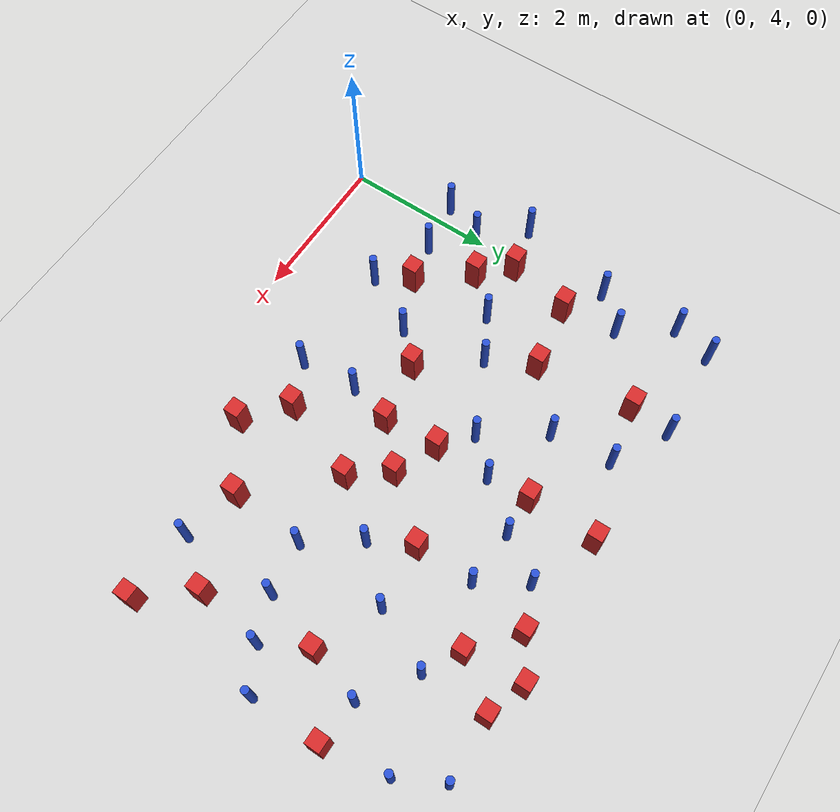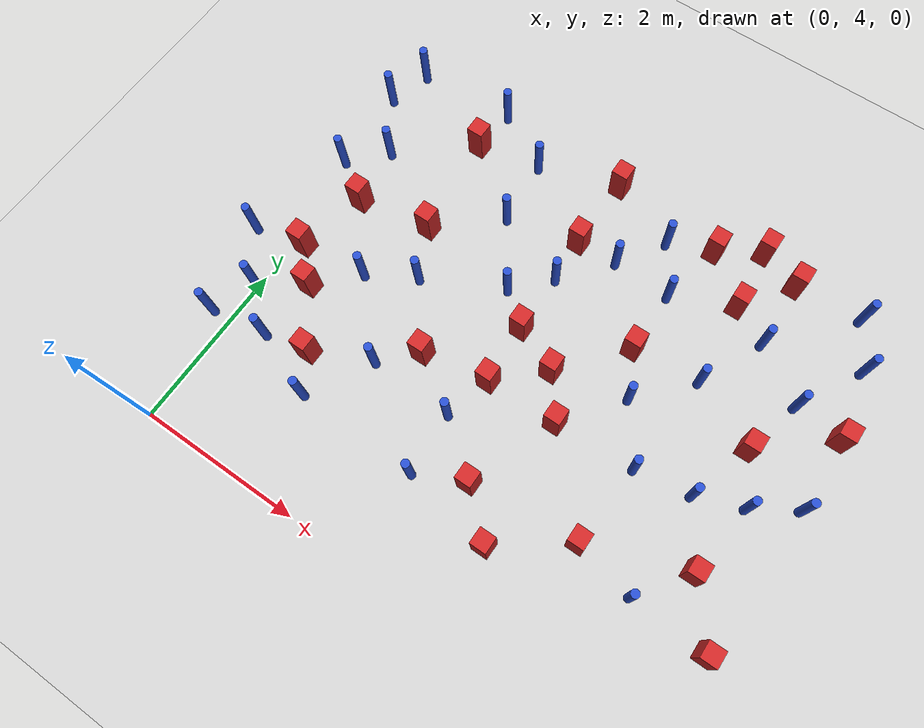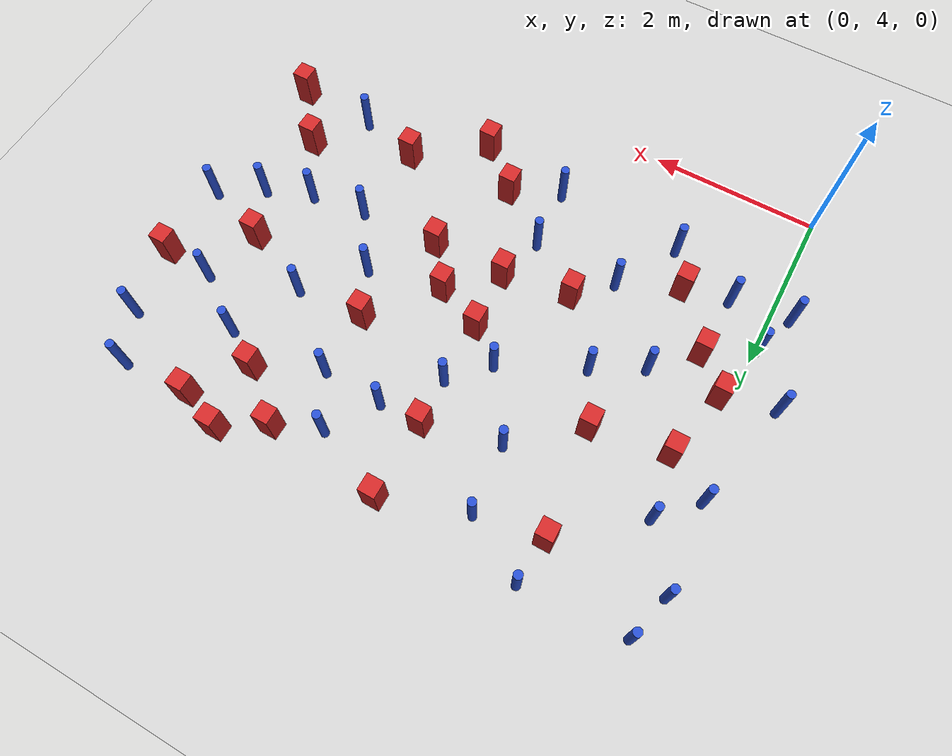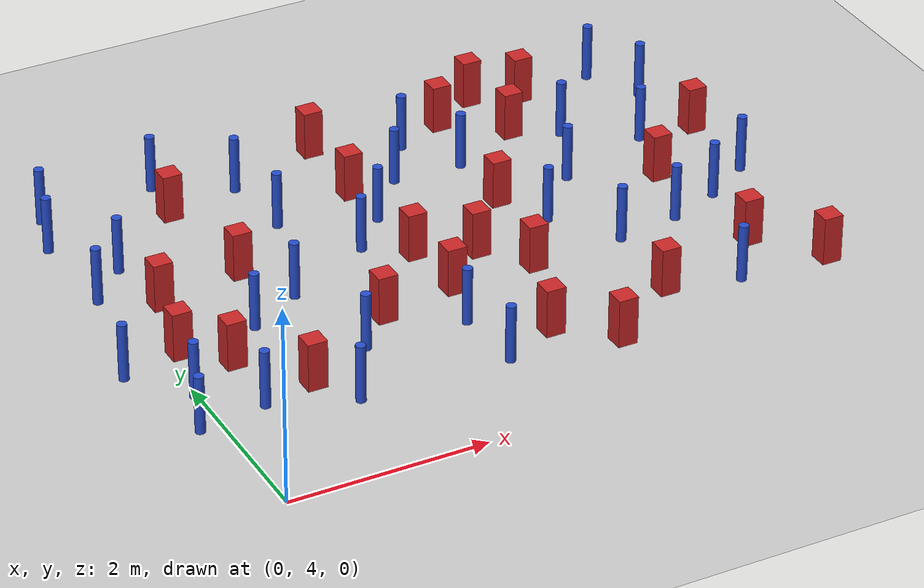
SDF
<sdf version="1.6">
 <world name="default">
  <model name="ground_plane">
   <static>1</static>
   <link name="link">
    <collision name="collision">
     <geometry><plane><normal>0 0 1</normal><size>100 100</size></plane></geometry>
     <surface><friction><ode><mu>100</mu><mu2>50</mu2></ode></friction></surface>
    </collision>
    <visual name="visual">
     <cast_shadows>0</cast_shadows>
     <geometry><plane><normal>0 0 1</normal><size>100 100</size></plane></geometry>
     <material>
      <ambient>1.0 1.0 1.0 1.0</ambient>
      <diffuse>0.8 0.8 0.8 1.0</diffuse>
      <specular>0.01 0.01 0.01 1.000000</specular>
     </material>
    </visual>
   </link>
  </model>
  <model name="pole_obstacle0">
   <static>true</static>
   <pose>5.19741799628 8.48322336086 -9.47619616065e-06 5.49618799737e-07 2.36310414065e-07 -1.55090534796e-07</pose>
   <link name="link">
    <pose>0 0 0.3 0 -0 0</pose>
    <inertial>
     <mass>1</mass>
     <inertia><ixx>0.145833</ixx><ixy>0</ixy><ixz>0</ixz><iyy>0.145833</iyy><iyz>0</iyz><izz>0.125</izz></inertia>
    </inertial>
    <collision name="collision">
     <geometry><cylinder><radius>0.05</radius><length>.6</length></cylinder></geometry>
    </collision>
    <visual name="visual">
     <geometry><cylinder><radius>0.05</radius><length>.6</length></cylinder></geometry>
     <material>
      <script><name>Gazebo/Blue</name><uri>file://media/materials/scripts/gazebo.material</uri></script>
     </material>
    </visual>
   </link>
  </model>
  <model name="square_post_obstacle7">
   <static>true</static>
   <pose>2.09273020799 6.26448453688 -6.11067671241e-07 -5.50515727128e-06 -8.79689657224e-07 2.37013304536e-05</pose>
   <link name="link">
    <pose>0 0 0.25 0 -0 0</pose>
    <inertial>
     <mass>100</mass>
     <inertia>
      <ixx>0.166667</ixx>
      <ixy>0</ixy>
      <ixz>0</ixz>
      <iyy>0.166667</iyy>
      <iyz>0</iyz>
      <izz>0.166667</izz>
     </inertia>
    </inertial>
    <collision name="collision"><geometry><box><size>.2 .2 .5</size></box></geometry></collision>
    <visual name="visual">
     <geometry><box><size>.2 .2 .5</size></box></geometry>
     <material>
      <script><name>Gazebo/Red</name><uri>file://media/materials/scripts/gazebo.material</uri></script>
     </material>
    </visual>
   </link>
  </model>
  <model name="square_post_obstacle19">
   <static>true</static>
   <pose>3.87518315333 4.90633559516 -6.11067671241e-07 -5.50515727128e-06 -8.79689657224e-07 2.37013304536e-05</pose>
   <link name="link">
    <pose>0 0 0.25 0 -0 0</pose>
    <inertial>
     <mass>100</mass>
     <inertia>
      <ixx>0.166667</ixx>
      <ixy>0</ixy>
      <ixz>0</ixz>
      <iyy>0.166667</iyy>
      <iyz>0</iyz>
      <izz>0.166667</izz>
     </inertia>
    </inertial>
    <collision name="collision"><geometry><box><size>.2 .2 .5</size></box></geometry></collision>
    <visual name="visual">
     <geometry><box><size>.2 .2 .5</size></box></geometry>
     <material>
      <script><name>Gazebo/Red</name><uri>file://media/materials/scripts/gazebo.material</uri></script>
     </material>
    </visual>
   </link>
  </model>
  <model name="pole_obstacle15">
   <static>true</static>
   <pose>0.95421234764 6.65799142697 -9.47619616065e-06 5.49618799737e-07 2.36310414071e-07 -1.55090534793e-07</pose>
   <link name="link">
    <pose>0 0 0.3 0 -0 0</pose>
    <inertial>
     <mass>1</mass>
     <inertia><ixx>0.145833</ixx><ixy>0</ixy><ixz>0</ixz><iyy>0.145833</iyy><iyz>0</iyz><izz>0.125</izz></inertia>
    </inertial>
    <collision name="collision">
     <geometry><cylinder><radius>0.05</radius><length>.6</length></cylinder></geometry>
    </collision>
    <visual name="visual">
     <geometry><cylinder><radius>0.05</radius><length>.6</length></cylinder></geometry>
     <material>
      <script><name>Gazebo/Blue</name><uri>file://media/materials/scripts/gazebo.material</uri></script>
     </material>
    </visual>
   </link>
  </model>
  <model name="square_post_obstacle26">
   <static>true</static>
   <pose>0.336653730102 7.42108719688 -6.11067671241e-07 -5.50515727128e-06 -8.79689657224e-07 2.37013304536e-05</pose>
   <link name="link">
    <pose>0 0 0.25 0 -0 0</pose>
    <inertial>
     <mass>100</mass>
     <inertia>
      <ixx>0.166667</ixx>
      <ixy>0</ixy>
      <ixz>0</ixz>
      <iyy>0.166667</iyy>
      <iyz>0</iyz>
      <izz>0.166667</izz>
     </inertia>
    </inertial>
    <collision name="collision"><geometry><box><size>.2 .2 .5</size></box></geometry></collision>
    <visual name="visual">
     <geometry><box><size>.2 .2 .5</size></box></geometry>
     <material>
      <script><name>Gazebo/Red</name><uri>file://media/materials/scripts/gazebo.material</uri></script>
     </material>
    </visual>
   </link>
  </model>
  <model name="pole_obstacle26">
   <static>true</static>
   <pose>-0.219872933968 8.78757814575 -9.47619616065e-06 5.49618799737e-07 2.36310414035e-07 -1.55090534816e-07</pose>
   <link name="link">
    <pose>0 0 0.3 0 -0 0</pose>
    <inertial>
     <mass>1</mass>
     <inertia><ixx>0.145833</ixx><ixy>0</ixy><ixz>0</ixz><iyy>0.145833</iyy><iyz>0</iyz><izz>0.125</izz></inertia>
    </inertial>
    <collision name="collision">
     <geometry><cylinder><radius>0.05</radius><length>.6</length></cylinder></geometry>
    </collision>
    <visual name="visual">
     <geometry><cylinder><radius>0.05</radius><length>.6</length></cylinder></geometry>
     <material>
      <script><name>Gazebo/Blue</name><uri>file://media/materials/scripts/gazebo.material</uri></script>
     </material>
    </visual>
   </link>
  </model>
  <model name="pole_obstacle29">
   <static>true</static>
   <pose>1.84248294729 8.99189750291 -9.47619616065e-06 5.49618799737e-07 2.36310414046e-07 -1.55090534809e-07</pose>
   <link name="link">
    <pose>0 0 0.3 0 -0 0</pose>
    <inertial>
     <mass>1</mass>
     <inertia><ixx>0.145833</ixx><ixy>0</ixy><ixz>0</ixz><iyy>0.145833</iyy><iyz>0</iyz><izz>0.125</izz></inertia>
    </inertial>
    <collision name="collision">
     <geometry><cylinder><radius>0.05</radius><length>.6</length></cylinder></geometry>
    </collision>
    <visual name="visual">
     <geometry><cylinder><radius>0.05</radius><length>.6</length></cylinder></geometry>
     <material>
      <script><name>Gazebo/Blue</name><uri>file://media/materials/scripts/gazebo.material</uri></script>
     </material>
    </visual>
   </link>
  </model>
  <model name="pole_obstacle30">
   <static>true</static>
   <pose>4.83496480457 7.69824750195 -9.47619616065e-06 5.49618799737e-07 2.36310414037e-07 -1.55090534814e-07</pose>
   <link name="link">
    <pose>0 0 0.3 0 -0 0</pose>
    <inertial>
     <mass>1</mass>
     <inertia><ixx>0.145833</ixx><ixy>0</ixy><ixz>0</ixz><iyy>0.145833</iyy><iyz>0</iyz><izz>0.125</izz></inertia>
    </inertial>
    <collision name="collision">
     <geometry><cylinder><radius>0.05</radius><length>.6</length></cylinder></geometry>
    </collision>
    <visual name="visual">
     <geometry><cylinder><radius>0.05</radius><length>.6</length></cylinder></geometry>
     <material>
      <script><name>Gazebo/Blue</name><uri>file://media/materials/scripts/gazebo.material</uri></script>
     </material>
    </visual>
   </link>
  </model>
  <model name="square_post_obstacle36">
   <static>true</static>
   <pose>2.81051215205 9.31708207567 -6.11067671241e-07 -5.50515727128e-06 -8.79689657224e-07 2.37013304536e-05</pose>
   <link name="link">
    <pose>0 0 0.25 0 -0 0</pose>
    <inertial>
     <mass>100</mass>
     <inertia>
      <ixx>0.166667</ixx>
      <ixy>0</ixy>
      <ixz>0</ixz>
      <iyy>0.166667</iyy>
      <iyz>0</iyz>
      <izz>0.166667</izz>
     </inertia>
    </inertial>
    <collision name="collision"><geometry><box><size>.2 .2 .5</size></box></geometry></collision>
    <visual name="visual">
     <geometry><box><size>.2 .2 .5</size></box></geometry>
     <material>
      <script><name>Gazebo/Red</name><uri>file://media/materials/scripts/gazebo.material</uri></script>
     </material>
    </visual>
   </link>
  </model>
  <model name="pole_obstacle38">
   <static>true</static>
   <pose>1.9216149402 8.19574291978 -9.47619616065e-06 5.49618799737e-07 2.36310414046e-07 -1.55090534809e-07</pose>
   <link name="link">
    <pose>0 0 0.3 0 -0 0</pose>
    <inertial>
     <mass>1</mass>
     <inertia><ixx>0.145833</ixx><ixy>0</ixy><ixz>0</ixz><iyy>0.145833</iyy><iyz>0</iyz><izz>0.125</izz></inertia>
    </inertial>
    <collision name="collision">
     <geometry><cylinder><radius>0.05</radius><length>.6</length></cylinder></geometry>
    </collision>
    <visual name="visual">
     <geometry><cylinder><radius>0.05</radius><length>.6</length></cylinder></geometry>
     <material>
      <script><name>Gazebo/Blue</name><uri>file://media/materials/scripts/gazebo.material</uri></script>
     </material>
    </visual>
   </link>
  </model>
  <model name="square_post_obstacle38">
   <static>true</static>
   <pose>3.40148820344 6.88970716556 -6.11067671241e-07 -5.50515727128e-06 -8.79689657224e-07 2.37013304536e-05</pose>
   <link name="link">
    <pose>0 0 0.25 0 -0 0</pose>
    <inertial>
     <mass>100</mass>
     <inertia>
      <ixx>0.166667</ixx>
      <ixy>0</ixy>
      <ixz>0</ixz>
      <iyy>0.166667</iyy>
      <iyz>0</iyz>
      <izz>0.166667</izz>
     </inertia>
    </inertial>
    <collision name="collision"><geometry><box><size>.2 .2 .5</size></box></geometry></collision>
    <visual name="visual">
     <geometry><box><size>.2 .2 .5</size></box></geometry>
     <material>
      <script><name>Gazebo/Red</name><uri>file://media/materials/scripts/gazebo.material</uri></script>
     </material>
    </visual>
   </link>
  </model>
  <model name="square_post_obstacle54">
   <static>true</static>
   <pose>5.81487202677 5.89066754225 -6.11067671241e-07 -5.50515727128e-06 -8.79689657224e-07 2.37013304536e-05</pose>
   <link name="link">
    <pose>0 0 0.25 0 -0 0</pose>
    <inertial>
     <mass>100</mass>
     <inertia>
      <ixx>0.166667</ixx>
      <ixy>0</ixy>
      <ixz>0</ixz>
      <iyy>0.166667</iyy>
      <iyz>0</iyz>
      <izz>0.166667</izz>
     </inertia>
    </inertial>
    <collision name="collision"><geometry><box><size>.2 .2 .5</size></box></geometry></collision>
    <visual name="visual">
     <geometry><box><size>.2 .2 .5</size></box></geometry>
     <material>
      <script><name>Gazebo/Red</name><uri>file://media/materials/scripts/gazebo.material</uri></script>
     </material>
    </visual>
   </link>
  </model>
  <model name="square_post_obstacle57">
   <static>true</static>
   <pose>1.22061801658 7.57618531943 -6.11067671241e-07 -5.50515727128e-06 -8.79689657224e-07 2.37013304536e-05</pose>
   <link name="link">
    <pose>0 0 0.25 0 -0 0</pose>
    <inertial>
     <mass>100</mass>
     <inertia>
      <ixx>0.166667</ixx>
      <ixy>0</ixy>
      <ixz>0</ixz>
      <iyy>0.166667</iyy>
      <iyz>0</iyz>
      <izz>0.166667</izz>
     </inertia>
    </inertial>
    <collision name="collision"><geometry><box><size>.2 .2 .5</size></box></geometry></collision>
    <visual name="visual">
     <geometry><box><size>.2 .2 .5</size></box></geometry>
     <material>
      <script><name>Gazebo/Red</name><uri>file://media/materials/scripts/gazebo.material</uri></script>
     </material>
    </visual>
   </link>
  </model>
  <model name="pole_obstacle54">
   <static>true</static>
   <pose>6.28783105977 8.81485360173 -9.47619616065e-06 5.49618799737e-07 2.36310414065e-07 -1.55090534796e-07</pose>
   <link name="link">
    <pose>0 0 0.3 0 -0 0</pose>
    <inertial>
     <mass>1</mass>
     <inertia><ixx>0.145833</ixx><ixy>0</ixy><ixz>0</ixz><iyy>0.145833</iyy><iyz>0</iyz><izz>0.125</izz></inertia>
    </inertial>
    <collision name="collision">
     <geometry><cylinder><radius>0.05</radius><length>.6</length></cylinder></geometry>
    </collision>
    <visual name="visual">
     <geometry><cylinder><radius>0.05</radius><length>.6</length></cylinder></geometry>
     <material>
      <script><name>Gazebo/Blue</name><uri>file://media/materials/scripts/gazebo.material</uri></script>
     </material>
    </visual>
   </link>
  </model>
  <model name="square_post_obstacle63">
   <static>true</static>
   <pose>1.02216089718 5.55954226574 -6.11067671241e-07 -5.50515727128e-06 -8.79689657224e-07 2.37013304536e-05</pose>
   <link name="link">
    <pose>0 0 0.25 0 -0 0</pose>
    <inertial>
     <mass>100</mass>
     <inertia>
      <ixx>0.166667</ixx>
      <ixy>0</ixy>
      <ixz>0</ixz>
      <iyy>0.166667</iyy>
      <iyz>0</iyz>
      <izz>0.166667</izz>
     </inertia>
    </inertial>
    <collision name="collision"><geometry><box><size>.2 .2 .5</size></box></geometry></collision>
    <visual name="visual">
     <geometry><box><size>.2 .2 .5</size></box></geometry>
     <material>
      <script><name>Gazebo/Red</name><uri>file://media/materials/scripts/gazebo.material</uri></script>
     </material>
    </visual>
   </link>
  </model>
  <model name="square_post_obstacle70">
   <static>true</static>
   <pose>1.07667161121 8.84426578443 -6.11067671241e-07 -5.50515727128e-06 -8.79689657224e-07 2.37013304536e-05</pose>
   <link name="link">
    <pose>0 0 0.25 0 -0 0</pose>
    <inertial>
     <mass>100</mass>
     <inertia>
      <ixx>0.166667</ixx>
      <ixy>0</ixy>
      <ixz>0</ixz>
      <iyy>0.166667</iyy>
      <iyz>0</iyz>
      <izz>0.166667</izz>
     </inertia>
    </inertial>
    <collision name="collision"><geometry><box><size>.2 .2 .5</size></box></geometry></collision>
    <visual name="visual">
     <geometry><box><size>.2 .2 .5</size></box></geometry>
     <material>
      <script><name>Gazebo/Red</name><uri>file://media/materials/scripts/gazebo.material</uri></script>
     </material>
    </visual>
   </link>
  </model>
  <model name="pole_obstacle67">
   <static>true</static>
   <pose>5.99469964024 9.37519393579 -9.47619616065e-06 5.49618799737e-07 2.36310414065e-07 -1.55090534796e-07</pose>
   <link name="link">
    <pose>0 0 0.3 0 -0 0</pose>
    <inertial>
     <mass>1</mass>
     <inertia><ixx>0.145833</ixx><ixy>0</ixy><ixz>0</ixz><iyy>0.145833</iyy><iyz>0</iyz><izz>0.125</izz></inertia>
    </inertial>
    <collision name="collision">
     <geometry><cylinder><radius>0.05</radius><length>.6</length></cylinder></geometry>
    </collision>
    <visual name="visual">
     <geometry><cylinder><radius>0.05</radius><length>.6</length></cylinder></geometry>
     <material>
      <script><name>Gazebo/Blue</name><uri>file://media/materials/scripts/gazebo.material</uri></script>
     </material>
    </visual>
   </link>
  </model>
  <model name="pole_obstacle74">
   <static>true</static>
   <pose>3.6603134197 8.97504243402 -9.4761961606e-06 5.49618799729e-07 2.36310414e-07 -1.55090534824e-07</pose>
   <link name="link">
    <pose>0 0 0.3 0 -0 0</pose>
    <inertial>
     <mass>1</mass>
     <inertia><ixx>0.145833</ixx><ixy>0</ixy><ixz>0</ixz><iyy>0.145833</iyy><iyz>0</iyz><izz>0.125</izz></inertia>
    </inertial>
    <collision name="collision">
     <geometry><cylinder><radius>0.05</radius><length>.6</length></cylinder></geometry>
    </collision>
    <visual name="visual">
     <geometry><cylinder><radius>0.05</radius><length>.6</length></cylinder></geometry>
     <material>
      <script><name>Gazebo/Blue</name><uri>file://media/materials/scripts/gazebo.material</uri></script>
     </material>
    </visual>
   </link>
  </model>
  <model name="pole_obstacle76">
   <static>true</static>
   <pose>5.85387749082 8.040553587 -9.47619616065e-06 5.49618799737e-07 2.36310414048e-07 -1.55090534806e-07</pose>
   <link name="link">
    <pose>0 0 0.3 0 -0 0</pose>
    <inertial>
     <mass>1</mass>
     <inertia><ixx>0.145833</ixx><ixy>0</ixy><ixz>0</ixz><iyy>0.145833</iyy><iyz>0</iyz><izz>0.125</izz></inertia>
    </inertial>
    <collision name="collision">
     <geometry><cylinder><radius>0.05</radius><length>.6</length></cylinder></geometry>
    </collision>
    <visual name="visual">
     <geometry><cylinder><radius>0.05</radius><length>.6</length></cylinder></geometry>
     <material>
      <script><name>Gazebo/Blue</name><uri>file://media/materials/scripts/gazebo.material</uri></script>
     </material>
    </visual>
   </link>
  </model>
  <model name="square_post_obstacle79">
   <static>true</static>
   <pose>2.79995793897 8.40884250958 -6.11067671241e-07 -5.50515727128e-06 -8.79689657224e-07 2.37013304536e-05</pose>
   <link name="link">
    <pose>0 0 0.25 0 -0 0</pose>
    <inertial>
     <mass>100</mass>
     <inertia>
      <ixx>0.166667</ixx>
      <ixy>0</ixy>
      <ixz>0</ixz>
      <iyy>0.166667</iyy>
      <iyz>0</iyz>
      <izz>0.166667</izz>
     </inertia>
    </inertial>
    <collision name="collision"><geometry><box><size>.2 .2 .5</size></box></geometry></collision>
    <visual name="visual">
     <geometry><box><size>.2 .2 .5</size></box></geometry>
     <material>
      <script><name>Gazebo/Red</name><uri>file://media/materials/scripts/gazebo.material</uri></script>
     </material>
    </visual>
   </link>
  </model>
  <model name="pole_obstacle83">
   <static>true</static>
   <pose>-0.210621583658 5.33925083969 -9.47619616065e-06 5.49618799737e-07 2.36310414064e-07 -1.55090534799e-07</pose>
   <link name="link">
    <pose>0 0 0.3 0 -0 0</pose>
    <inertial>
     <mass>1</mass>
     <inertia><ixx>0.145833</ixx><ixy>0</ixy><ixz>0</ixz><iyy>0.145833</iyy><iyz>0</iyz><izz>0.125</izz></inertia>
    </inertial>
    <collision name="collision">
     <geometry><cylinder><radius>0.05</radius><length>.6</length></cylinder></geometry>
    </collision>
    <visual name="visual">
     <geometry><cylinder><radius>0.05</radius><length>.6</length></cylinder></geometry>
     <material>
      <script><name>Gazebo/Blue</name><uri>file://media/materials/scripts/gazebo.material</uri></script>
     </material>
    </visual>
   </link>
  </model>
  <model name="square_post_obstacle81">
   <static>true</static>
   <pose>0.144275870156 6.57531197295 -6.11067671241e-07 -5.50515727128e-06 -8.79689657224e-07 2.37013304536e-05</pose>
   <link name="link">
    <pose>0 0 0.25 0 -0 0</pose>
    <inertial>
     <mass>100</mass>
     <inertia>
      <ixx>0.166667</ixx>
      <ixy>0</ixy>
      <ixz>0</ixz>
      <iyy>0.166667</iyy>
      <iyz>0</iyz>
      <izz>0.166667</izz>
     </inertia>
    </inertial>
    <collision name="collision"><geometry><box><size>.2 .2 .5</size></box></geometry></collision>
    <visual name="visual">
     <geometry><box><size>.2 .2 .5</size></box></geometry>
     <material>
      <script><name>Gazebo/Red</name><uri>file://media/materials/scripts/gazebo.material</uri></script>
     </material>
    </visual>
   </link>
  </model>
  <model name="pole_obstacle95">
   <static>true</static>
   <pose>1.12281939114 9.38756603825 -9.47619616065e-06 5.49618799737e-07 2.36310414046e-07 -1.55090534809e-07</pose>
   <link name="link">
    <pose>0 0 0.3 0 -0 0</pose>
    <inertial>
     <mass>1</mass>
     <inertia><ixx>0.145833</ixx><ixy>0</ixy><ixz>0</ixz><iyy>0.145833</iyy><iyz>0</iyz><izz>0.125</izz></inertia>
    </inertial>
    <collision name="collision">
     <geometry><cylinder><radius>0.05</radius><length>.6</length></cylinder></geometry>
    </collision>
    <visual name="visual">
     <geometry><cylinder><radius>0.05</radius><length>.6</length></cylinder></geometry>
     <material>
      <script><name>Gazebo/Blue</name><uri>file://media/materials/scripts/gazebo.material</uri></script>
     </material>
    </visual>
   </link>
  </model>
  <model name="pole_obstacle99">
   <static>true</static>
   <pose>-0.0736986952354 9.30772536776 -9.47619616065e-06 5.49618799737e-07 2.36310414037e-07 -1.55090534815e-07</pose>
   <link name="link">
    <pose>0 0 0.3 0 -0 0</pose>
    <inertial>
     <mass>1</mass>
     <inertia><ixx>0.145833</ixx><ixy>0</ixy><ixz>0</ixz><iyy>0.145833</iyy><iyz>0</iyz><izz>0.125</izz></inertia>
    </inertial>
    <collision name="collision">
     <geometry><cylinder><radius>0.05</radius><length>.6</length></cylinder></geometry>
    </collision>
    <visual name="visual">
     <geometry><cylinder><radius>0.05</radius><length>.6</length></cylinder></geometry>
     <material>
      <script><name>Gazebo/Blue</name><uri>file://media/materials/scripts/gazebo.material</uri></script>
     </material>
    </visual>
   </link>
  </model>
  <model name="pole_obstacle100">
   <static>true</static>
   <pose>-0.0204179574533 5.86836931209 -9.47619616065e-06 5.49618799737e-07 2.36310414067e-07 -1.55090534797e-07</pose>
   <link name="link">
    <pose>0 0 0.3 0 -0 0</pose>
    <inertial>
     <mass>1</mass>
     <inertia><ixx>0.145833</ixx><ixy>0</ixy><ixz>0</ixz><iyy>0.145833</iyy><iyz>0</iyz><izz>0.125</izz></inertia>
    </inertial>
    <collision name="collision">
     <geometry><cylinder><radius>0.05</radius><length>.6</length></cylinder></geometry>
    </collision>
    <visual name="visual">
     <geometry><cylinder><radius>0.05</radius><length>.6</length></cylinder></geometry>
     <material>
      <script><name>Gazebo/Blue</name><uri>file://media/materials/scripts/gazebo.material</uri></script>
     </material>
    </visual>
   </link>
  </model>
  <model name="square_post_obstacle89">
   <static>true</static>
   <pose>3.36773660828 5.35859667887 -6.11067671241e-07 -5.50515727128e-06 -8.79689657224e-07 2.37013304536e-05</pose>
   <link name="link">
    <pose>0 0 0.25 0 -0 0</pose>
    <inertial>
     <mass>100</mass>
     <inertia>
      <ixx>0.166667</ixx>
      <ixy>0</ixy>
      <ixz>0</ixz>
      <iyy>0.166667</iyy>
      <iyz>0</iyz>
      <izz>0.166667</izz>
     </inertia>
    </inertial>
    <collision name="collision"><geometry><box><size>.2 .2 .5</size></box></geometry></collision>
    <visual name="visual">
     <geometry><box><size>.2 .2 .5</size></box></geometry>
     <material>
      <script><name>Gazebo/Red</name><uri>file://media/materials/scripts/gazebo.material</uri></script>
     </material>
    </visual>
   </link>
  </model>
  <model name="square_post_obstacle92">
   <static>true</static>
   <pose>5.17390370165 9.32691966788 -6.11067671241e-07 -5.50515727128e-06 -8.79689657224e-07 2.37013304536e-05</pose>
   <link name="link">
    <pose>0 0 0.25 0 -0 0</pose>
    <inertial>
     <mass>100</mass>
     <inertia>
      <ixx>0.166667</ixx>
      <ixy>0</ixy>
      <ixz>0</ixz>
      <iyy>0.166667</iyy>
      <iyz>0</iyz>
      <izz>0.166667</izz>
     </inertia>
    </inertial>
    <collision name="collision"><geometry><box><size>.2 .2 .5</size></box></geometry></collision>
    <visual name="visual">
     <geometry><box><size>.2 .2 .5</size></box></geometry>
     <material>
      <script><name>Gazebo/Red</name><uri>file://media/materials/scripts/gazebo.material</uri></script>
     </material>
    </visual>
   </link>
  </model>
  <model name="pole_obstacle112">
   <static>true</static>
   <pose>0.22996232627 8.14747525837 -9.47619616065e-06 5.49618799738e-07 2.36310414036e-07 -1.55090534814e-07</pose>
   <link name="link">
    <pose>0 0 0.3 0 -0 0</pose>
    <inertial>
     <mass>1</mass>
     <inertia><ixx>0.145833</ixx><ixy>0</ixy><ixz>0</ixz><iyy>0.145833</iyy><iyz>0</iyz><izz>0.125</izz></inertia>
    </inertial>
    <collision name="collision">
     <geometry><cylinder><radius>0.05</radius><length>.6</length></cylinder></geometry>
    </collision>
    <visual name="visual">
     <geometry><cylinder><radius>0.05</radius><length>.6</length></cylinder></geometry>
     <material>
      <script><name>Gazebo/Blue</name><uri>file://media/materials/scripts/gazebo.material</uri></script>
     </material>
    </visual>
   </link>
  </model>
  <model name="square_post_obstacle103">
   <static>true</static>
   <pose>0.518420650284 6.20366347108 -6.11067671241e-07 -5.50515727128e-06 -8.79689657224e-07 2.37013304536e-05</pose>
   <link name="link">
    <pose>0 0 0.25 0 -0 0</pose>
    <inertial>
     <mass>100</mass>
     <inertia>
      <ixx>0.166667</ixx>
      <ixy>0</ixy>
      <ixz>0</ixz>
      <iyy>0.166667</iyy>
      <iyz>0</iyz>
      <izz>0.166667</izz>
     </inertia>
    </inertial>
    <collision name="collision"><geometry><box><size>.2 .2 .5</size></box></geometry></collision>
    <visual name="visual">
     <geometry><box><size>.2 .2 .5</size></box></geometry>
     <material>
      <script><name>Gazebo/Red</name><uri>file://media/materials/scripts/gazebo.material</uri></script>
     </material>
    </visual>
   </link>
  </model>
  <model name="square_post_obstacle104">
   <static>true</static>
   <pose>6.31140203602 5.26531945506 -6.11067671241e-07 -5.50515727128e-06 -8.79689657224e-07 2.37013304536e-05</pose>
   <link name="link">
    <pose>0 0 0.25 0 -0 0</pose>
    <inertial>
     <mass>100</mass>
     <inertia>
      <ixx>0.166667</ixx>
      <ixy>0</ixy>
      <ixz>0</ixz>
      <iyy>0.166667</iyy>
      <iyz>0</iyz>
      <izz>0.166667</izz>
     </inertia>
    </inertial>
    <collision name="collision"><geometry><box><size>.2 .2 .5</size></box></geometry></collision>
    <visual name="visual">
     <geometry><box><size>.2 .2 .5</size></box></geometry>
     <material>
      <script><name>Gazebo/Red</name><uri>file://media/materials/scripts/gazebo.material</uri></script>
     </material>
    </visual>
   </link>
  </model>
  <model name="square_post_obstacle107">
   <static>true</static>
   <pose>4.66507887435 5.48126279658 -6.11067671241e-07 -5.50515727128e-06 -8.79689657224e-07 2.37013304536e-05</pose>
   <link name="link">
    <pose>0 0 0.25 0 -0 0</pose>
    <inertial>
     <mass>100</mass>
     <inertia>
      <ixx>0.166667</ixx>
      <ixy>0</ixy>
      <ixz>0</ixz>
      <iyy>0.166667</iyy>
      <iyz>0</iyz>
      <izz>0.166667</izz>
     </inertia>
    </inertial>
    <collision name="collision"><geometry><box><size>.2 .2 .5</size></box></geometry></collision>
    <visual name="visual">
     <geometry><box><size>.2 .2 .5</size></box></geometry>
     <material>
      <script><name>Gazebo/Red</name><uri>file://media/materials/scripts/gazebo.material</uri></script>
     </material>
    </visual>
   </link>
  </model>
  <model name="pole_obstacle125">
   <static>true</static>
   <pose>4.74102527173 6.45525344038 -9.47619616065e-06 5.49618799737e-07 2.36310414037e-07 -1.55090534814e-07</pose>
   <link name="link">
    <pose>0 0 0.3 0 -0 0</pose>
    <inertial>
     <mass>1</mass>
     <inertia><ixx>0.145833</ixx><ixy>0</ixy><ixz>0</ixz><iyy>0.145833</iyy><iyz>0</iyz><izz>0.125</izz></inertia>
    </inertial>
    <collision name="collision">
     <geometry><cylinder><radius>0.05</radius><length>.6</length></cylinder></geometry>
    </collision>
    <visual name="visual">
     <geometry><cylinder><radius>0.05</radius><length>.6</length></cylinder></geometry>
     <material>
      <script><name>Gazebo/Blue</name><uri>file://media/materials/scripts/gazebo.material</uri></script>
     </material>
    </visual>
   </link>
  </model>
  <model name="pole_obstacle126">
   <static>true</static>
   <pose>5.39764880527 6.55487680798 -9.47619616065e-06 5.49618799737e-07 2.36310414037e-07 -1.55090534814e-07</pose>
   <link name="link">
    <pose>0 0 0.3 0 -0 0</pose>
    <inertial>
     <mass>1</mass>
     <inertia><ixx>0.145833</ixx><ixy>0</ixy><ixz>0</ixz><iyy>0.145833</iyy><iyz>0</iyz><izz>0.125</izz></inertia>
    </inertial>
    <collision name="collision">
     <geometry><cylinder><radius>0.05</radius><length>.6</length></cylinder></geometry>
    </collision>
    <visual name="visual">
     <geometry><cylinder><radius>0.05</radius><length>.6</length></cylinder></geometry>
     <material>
      <script><name>Gazebo/Blue</name><uri>file://media/materials/scripts/gazebo.material</uri></script>
     </material>
    </visual>
   </link>
  </model>
  <model name="square_post_obstacle113">
   <static>true</static>
   <pose>4.17944228335 9.19454475157 -6.11067671241e-07 -5.50515727128e-06 -8.79689657224e-07 2.37013304536e-05</pose>
   <link name="link">
    <pose>0 0 0.25 0 -0 0</pose>
    <inertial>
     <mass>100</mass>
     <inertia>
      <ixx>0.166667</ixx>
      <ixy>0</ixy>
      <ixz>0</ixz>
      <iyy>0.166667</iyy>
      <iyz>0</iyz>
      <izz>0.166667</izz>
     </inertia>
    </inertial>
    <collision name="collision"><geometry><box><size>.2 .2 .5</size></box></geometry></collision>
    <visual name="visual">
     <geometry><box><size>.2 .2 .5</size></box></geometry>
     <material>
      <script><name>Gazebo/Red</name><uri>file://media/materials/scripts/gazebo.material</uri></script>
     </material>
    </visual>
   </link>
  </model>
  <model name="square_post_obstacle114">
   <static>true</static>
   <pose>2.84364689261 7.12829670723 -6.11067671241e-07 -5.50515727128e-06 -8.79689657224e-07 2.37013304536e-05</pose>
   <link name="link">
    <pose>0 0 0.25 0 -0 0</pose>
    <inertial>
     <mass>100</mass>
     <inertia>
      <ixx>0.166667</ixx>
      <ixy>0</ixy>
      <ixz>0</ixz>
      <iyy>0.166667</iyy>
      <iyz>0</iyz>
      <izz>0.166667</izz>
     </inertia>
    </inertial>
    <collision name="collision"><geometry><box><size>.2 .2 .5</size></box></geometry></collision>
    <visual name="visual">
     <geometry><box><size>.2 .2 .5</size></box></geometry>
     <material>
      <script><name>Gazebo/Red</name><uri>file://media/materials/scripts/gazebo.material</uri></script>
     </material>
    </visual>
   </link>
  </model>
  <model name="pole_obstacle137">
   <static>true</static>
   <pose>2.7952286176 5.0829686847 -9.47619616065e-06 5.49618799738e-07 2.3631041406e-07 -1.55090534801e-07</pose>
   <link name="link">
    <pose>0 0 0.3 0 -0 0</pose>
    <inertial>
     <mass>1</mass>
     <inertia><ixx>0.145833</ixx><ixy>0</ixy><ixz>0</ixz><iyy>0.145833</iyy><iyz>0</iyz><izz>0.125</izz></inertia>
    </inertial>
    <collision name="collision">
     <geometry><cylinder><radius>0.05</radius><length>.6</length></cylinder></geometry>
    </collision>
    <visual name="visual">
     <geometry><cylinder><radius>0.05</radius><length>.6</length></cylinder></geometry>
     <material>
      <script><name>Gazebo/Blue</name><uri>file://media/materials/scripts/gazebo.material</uri></script>
     </material>
    </visual>
   </link>
  </model>
  <model name="pole_obstacle139">
   <static>true</static>
   <pose>2.74311064338 5.83382712847 -9.47619616065e-06 5.49618799738e-07 2.3631041406e-07 -1.55090534801e-07</pose>
   <link name="link">
    <pose>0 0 0.3 0 -0 0</pose>
    <inertial>
     <mass>1</mass>
     <inertia><ixx>0.145833</ixx><ixy>0</ixy><ixz>0</ixz><iyy>0.145833</iyy><iyz>0</iyz><izz>0.125</izz></inertia>
    </inertial>
    <collision name="collision">
     <geometry><cylinder><radius>0.05</radius><length>.6</length></cylinder></geometry>
    </collision>
    <visual name="visual">
     <geometry><cylinder><radius>0.05</radius><length>.6</length></cylinder></geometry>
     <material>
      <script><name>Gazebo/Blue</name><uri>file://media/materials/scripts/gazebo.material</uri></script>
     </material>
    </visual>
   </link>
  </model>
  <model name="square_post_obstacle135">
   <static>true</static>
   <pose>6.42784750877 7.99177826266 -6.11067671241e-07 -5.50515727128e-06 -8.79689657224e-07 2.37013304536e-05</pose>
   <link name="link">
    <pose>0 0 0.25 0 -0 0</pose>
    <inertial>
     <mass>100</mass>
     <inertia>
      <ixx>0.166667</ixx>
      <ixy>0</ixy>
      <ixz>0</ixz>
      <iyy>0.166667</iyy>
      <iyz>0</iyz>
      <izz>0.166667</izz>
     </inertia>
    </inertial>
    <collision name="collision"><geometry><box><size>.2 .2 .5</size></box></geometry></collision>
    <visual name="visual">
     <geometry><box><size>.2 .2 .5</size></box></geometry>
     <material>
      <script><name>Gazebo/Red</name><uri>file://media/materials/scripts/gazebo.material</uri></script>
     </material>
    </visual>
   </link>
  </model>
  <model name="pole_obstacle146">
   <static>true</static>
   <pose>6.44012683943 7.07051068426 -9.47619616065e-06 5.49618799737e-07 2.36310414037e-07 -1.55090534814e-07</pose>
   <link name="link">
    <pose>0 0 0.3 0 -0 0</pose>
    <inertial>
     <mass>1</mass>
     <inertia><ixx>0.145833</ixx><ixy>0</ixy><ixz>0</ixz><iyy>0.145833</iyy><iyz>0</iyz><izz>0.125</izz></inertia>
    </inertial>
    <collision name="collision">
     <geometry><cylinder><radius>0.05</radius><length>.6</length></cylinder></geometry>
    </collision>
    <visual name="visual">
     <geometry><cylinder><radius>0.05</radius><length>.6</length></cylinder></geometry>
     <material>
      <script><name>Gazebo/Blue</name><uri>file://media/materials/scripts/gazebo.material</uri></script>
     </material>
    </visual>
   </link>
  </model>
  <model name="pole_obstacle155">
   <static>true</static>
   <pose>-0.472275877347 6.43050406136 -9.47619616065e-06 5.49618799737e-07 2.36310414063e-07 -1.55090534797e-07</pose>
   <link name="link">
    <pose>0 0 0.3 0 -0 0</pose>
    <inertial>
     <mass>1</mass>
     <inertia><ixx>0.145833</ixx><ixy>0</ixy><ixz>0</ixz><iyy>0.145833</iyy><iyz>0</iyz><izz>0.125</izz></inertia>
    </inertial>
    <collision name="collision">
     <geometry><cylinder><radius>0.05</radius><length>.6</length></cylinder></geometry>
    </collision>
    <visual name="visual">
     <geometry><cylinder><radius>0.05</radius><length>.6</length></cylinder></geometry>
     <material>
      <script><name>Gazebo/Blue</name><uri>file://media/materials/scripts/gazebo.material</uri></script>
     </material>
    </visual>
   </link>
  </model>
  <model name="square_post_obstacle148">
   <static>true</static>
   <pose>3.76389604774 6.41842885878 -6.11067671241e-07 -5.50515727128e-06 -8.79689657224e-07 2.37013304536e-05</pose>
   <link name="link">
    <pose>0 0 0.25 0 -0 0</pose>
    <inertial>
     <mass>100</mass>
     <inertia>
      <ixx>0.166667</ixx>
      <ixy>0</ixy>
      <ixz>0</ixz>
      <iyy>0.166667</iyy>
      <iyz>0</iyz>
      <izz>0.166667</izz>
     </inertia>
    </inertial>
    <collision name="collision"><geometry><box><size>.2 .2 .5</size></box></geometry></collision>
    <visual name="visual">
     <geometry><box><size>.2 .2 .5</size></box></geometry>
     <material>
      <script><name>Gazebo/Red</name><uri>file://media/materials/scripts/gazebo.material</uri></script>
     </material>
    </visual>
   </link>
  </model>
  <model name="pole_obstacle159">
   <static>true</static>
   <pose>2.83201040576 7.85419397028 -9.47619616065e-06 5.49618799738e-07 2.3631041406e-07 -1.55090534801e-07</pose>
   <link name="link">
    <pose>0 0 0.3 0 -0 0</pose>
    <inertial>
     <mass>1</mass>
     <inertia><ixx>0.145833</ixx><ixy>0</ixy><ixz>0</ixz><iyy>0.145833</iyy><iyz>0</iyz><izz>0.125</izz></inertia>
    </inertial>
    <collision name="collision">
     <geometry><cylinder><radius>0.05</radius><length>.6</length></cylinder></geometry>
    </collision>
    <visual name="visual">
     <geometry><cylinder><radius>0.05</radius><length>.6</length></cylinder></geometry>
     <material>
      <script><name>Gazebo/Blue</name><uri>file://media/materials/scripts/gazebo.material</uri></script>
     </material>
    </visual>
   </link>
  </model>
  <model name="pole_obstacle173">
   <static>true</static>
   <pose>0.482274882039 5.44072149297 -9.47619616065e-06 5.49618799737e-07 2.36310414066e-07 -1.55090534795e-07</pose>
   <link name="link">
    <pose>0 0 0.3 0 -0 0</pose>
    <inertial>
     <mass>1</mass>
     <inertia><ixx>0.145833</ixx><ixy>0</ixy><ixz>0</ixz><iyy>0.145833</iyy><iyz>0</iyz><izz>0.125</izz></inertia>
    </inertial>
    <collision name="collision">
     <geometry><cylinder><radius>0.05</radius><length>.6</length></cylinder></geometry>
    </collision>
    <visual name="visual">
     <geometry><cylinder><radius>0.05</radius><length>.6</length></cylinder></geometry>
     <material>
      <script><name>Gazebo/Blue</name><uri>file://media/materials/scripts/gazebo.material</uri></script>
     </material>
    </visual>
   </link>
  </model>
  <model name="pole_obstacle177">
   <static>true</static>
   <pose>1.28498661895 5.12479679325 -9.47619616065e-06 5.49618799737e-07 2.36310414061e-07 -1.550905348e-07</pose>
   <link name="link">
    <pose>0 0 0.3 0 -0 0</pose>
    <inertial>
     <mass>1</mass>
     <inertia><ixx>0.145833</ixx><ixy>0</ixy><ixz>0</ixz><iyy>0.145833</iyy><iyz>0</iyz><izz>0.125</izz></inertia>
    </inertial>
    <collision name="collision">
     <geometry><cylinder><radius>0.05</radius><length>.6</length></cylinder></geometry>
    </collision>
    <visual name="visual">
     <geometry><cylinder><radius>0.05</radius><length>.6</length></cylinder></geometry>
     <material>
      <script><name>Gazebo/Blue</name><uri>file://media/materials/scripts/gazebo.material</uri></script>
     </material>
    </visual>
   </link>
  </model>
  <model name="pole_obstacle178">
   <static>true</static>
   <pose>4.28639426922 7.09371176536 -9.47619616065e-06 5.49618799737e-07 2.36310414037e-07 -1.55090534814e-07</pose>
   <link name="link">
    <pose>0 0 0.3 0 -0 0</pose>
    <inertial>
     <mass>1</mass>
     <inertia><ixx>0.145833</ixx><ixy>0</ixy><ixz>0</ixz><iyy>0.145833</iyy><iyz>0</iyz><izz>0.125</izz></inertia>
    </inertial>
    <collision name="collision">
     <geometry><cylinder><radius>0.05</radius><length>.6</length></cylinder></geometry>
    </collision>
    <visual name="visual">
     <geometry><cylinder><radius>0.05</radius><length>.6</length></cylinder></geometry>
     <material>
      <script><name>Gazebo/Blue</name><uri>file://media/materials/scripts/gazebo.material</uri></script>
     </material>
    </visual>
   </link>
  </model>
  <model name="square_post_obstacle172">
   <static>true</static>
   <pose>4.7436135274 8.73537413568 -6.11067671241e-07 -5.50515727128e-06 -8.79689657224e-07 2.37013304536e-05</pose>
   <link name="link">
    <pose>0 0 0.25 0 -0 0</pose>
    <inertial>
     <mass>100</mass>
     <inertia>
      <ixx>0.166667</ixx>
      <ixy>0</ixy>
      <ixz>0</ixz>
      <iyy>0.166667</iyy>
      <iyz>0</iyz>
      <izz>0.166667</izz>
     </inertia>
    </inertial>
    <collision name="collision"><geometry><box><size>.2 .2 .5</size></box></geometry></collision>
    <visual name="visual">
     <geometry><box><size>.2 .2 .5</size></box></geometry>
     <material>
      <script><name>Gazebo/Red</name><uri>file://media/materials/scripts/gazebo.material</uri></script>
     </material>
    </visual>
   </link>
  </model>
  <model name="square_post_obstacle177">
   <static>true</static>
   <pose>4.67946258365 9.49914718912 -6.11067671241e-07 -5.50515727128e-06 -8.79689657224e-07 2.37013304536e-05</pose>
   <link name="link">
    <pose>0 0 0.25 0 -0 0</pose>
    <inertial>
     <mass>100</mass>
     <inertia>
      <ixx>0.166667</ixx>
      <ixy>0</ixy>
      <ixz>0</ixz>
      <iyy>0.166667</iyy>
      <iyz>0</iyz>
      <izz>0.166667</izz>
     </inertia>
    </inertial>
    <collision name="collision"><geometry><box><size>.2 .2 .5</size></box></geometry></collision>
    <visual name="visual">
     <geometry><box><size>.2 .2 .5</size></box></geometry>
     <material>
      <script><name>Gazebo/Red</name><uri>file://media/materials/scripts/gazebo.material</uri></script>
     </material>
    </visual>
   </link>
  </model>
  <model name="square_post_obstacle195">
   <static>true</static>
   <pose>4.01967326841 7.62867431458 -6.11067671241e-07 -5.50515727128e-06 -8.79689657224e-07 2.37013304536e-05</pose>
   <link name="link">
    <pose>0 0 0.25 0 -0 0</pose>
    <inertial>
     <mass>100</mass>
     <inertia>
      <ixx>0.166667</ixx>
      <ixy>0</ixy>
      <ixz>0</ixz>
      <iyy>0.166667</iyy>
      <iyz>0</iyz>
      <izz>0.166667</izz>
     </inertia>
    </inertial>
    <collision name="collision"><geometry><box><size>.2 .2 .5</size></box></geometry></collision>
    <visual name="visual">
     <geometry><box><size>.2 .2 .5</size></box></geometry>
     <material>
      <script><name>Gazebo/Red</name><uri>file://media/materials/scripts/gazebo.material</uri></script>
     </material>
    </visual>
   </link>
  </model>
  <model name="pole_obstacle195">
   <static>true</static>
   <pose>3.30076764146 8.42431364794 -9.4761961606e-06 5.49618799729e-07 2.36310414e-07 -1.55090534824e-07</pose>
   <link name="link">
    <pose>0 0 0.3 0 -0 0</pose>
    <inertial>
     <mass>1</mass>
     <inertia><ixx>0.145833</ixx><ixy>0</ixy><ixz>0</ixz><iyy>0.145833</iyy><iyz>0</iyz><izz>0.125</izz></inertia>
    </inertial>
    <collision name="collision">
     <geometry><cylinder><radius>0.05</radius><length>.6</length></cylinder></geometry>
    </collision>
    <visual name="visual">
     <geometry><cylinder><radius>0.05</radius><length>.6</length></cylinder></geometry>
     <material>
      <script><name>Gazebo/Blue</name><uri>file://media/materials/scripts/gazebo.material</uri></script>
     </material>
    </visual>
   </link>
  </model>
  <model name="pole_obstacle203">
   <static>true</static>
   <pose>1.71220774205 5.87211037162 -9.47619616065e-06 5.49618799737e-07 2.36310414061e-07 -1.550905348e-07</pose>
   <link name="link">
    <pose>0 0 0.3 0 -0 0</pose>
    <inertial>
     <mass>1</mass>
     <inertia><ixx>0.145833</ixx><ixy>0</ixy><ixz>0</ixz><iyy>0.145833</iyy><iyz>0</iyz><izz>0.125</izz></inertia>
    </inertial>
    <collision name="collision">
     <geometry><cylinder><radius>0.05</radius><length>.6</length></cylinder></geometry>
    </collision>
    <visual name="visual">
     <geometry><cylinder><radius>0.05</radius><length>.6</length></cylinder></geometry>
     <material>
      <script><name>Gazebo/Blue</name><uri>file://media/materials/scripts/gazebo.material</uri></script>
     </material>
    </visual>
   </link>
  </model>
  <model name="pole_obstacle208">
   <static>true</static>
   <pose>-0.163678489659 7.73389882833 -9.47619616065e-06 5.49618799737e-07 2.36310414062e-07 -1.550905348e-07</pose>
   <link name="link">
    <pose>0 0 0.3 0 -0 0</pose>
    <inertial>
     <mass>1</mass>
     <inertia><ixx>0.145833</ixx><ixy>0</ixy><ixz>0</ixz><iyy>0.145833</iyy><iyz>0</iyz><izz>0.125</izz></inertia>
    </inertial>
    <collision name="collision">
     <geometry><cylinder><radius>0.05</radius><length>.6</length></cylinder></geometry>
    </collision>
    <visual name="visual">
     <geometry><cylinder><radius>0.05</radius><length>.6</length></cylinder></geometry>
     <material>
      <script><name>Gazebo/Blue</name><uri>file://media/materials/scripts/gazebo.material</uri></script>
     </material>
    </visual>
   </link>
  </model>
  <model name="pole_obstacle210">
   <static>true</static>
   <pose>5.94330339869 6.76043013241 -9.47619616065e-06 5.49618799737e-07 2.36310414037e-07 -1.55090534814e-07</pose>
   <link name="link">
    <pose>0 0 0.3 0 -0 0</pose>
    <inertial>
     <mass>1</mass>
     <inertia><ixx>0.145833</ixx><ixy>0</ixy><ixz>0</ixz><iyy>0.145833</iyy><iyz>0</iyz><izz>0.125</izz></inertia>
    </inertial>
    <collision name="collision">
     <geometry><cylinder><radius>0.05</radius><length>.6</length></cylinder></geometry>
    </collision>
    <visual name="visual">
     <geometry><cylinder><radius>0.05</radius><length>.6</length></cylinder></geometry>
     <material>
      <script><name>Gazebo/Blue</name><uri>file://media/materials/scripts/gazebo.material</uri></script>
     </material>
    </visual>
   </link>
  </model>
  <model name="pole_obstacle213">
   <static>true</static>
   <pose>4.01863111059 8.39183156953 -9.47619616065e-06 5.49618799737e-07 2.36310414062e-07 -1.55090534799e-07</pose>
   <link name="link">
    <pose>0 0 0.3 0 -0 0</pose>
    <inertial>
     <mass>1</mass>
     <inertia><ixx>0.145833</ixx><ixy>0</ixy><ixz>0</ixz><iyy>0.145833</iyy><iyz>0</iyz><izz>0.125</izz></inertia>
    </inertial>
    <collision name="collision">
     <geometry><cylinder><radius>0.05</radius><length>.6</length></cylinder></geometry>
    </collision>
    <visual name="visual">
     <geometry><cylinder><radius>0.05</radius><length>.6</length></cylinder></geometry>
     <material>
      <script><name>Gazebo/Blue</name><uri>file://media/materials/scripts/gazebo.material</uri></script>
     </material>
    </visual>
   </link>
  </model>
  <model name="pole_obstacle219">
   <static>true</static>
   <pose>2.44635695897 7.43720877975 -9.47619616065e-06 5.49618799738e-07 2.3631041406e-07 -1.55090534801e-07</pose>
   <link name="link">
    <pose>0 0 0.3 0 -0 0</pose>
    <inertial>
     <mass>1</mass>
     <inertia><ixx>0.145833</ixx><ixy>0</ixy><ixz>0</ixz><iyy>0.145833</iyy><iyz>0</iyz><izz>0.125</izz></inertia>
    </inertial>
    <collision name="collision">
     <geometry><cylinder><radius>0.05</radius><length>.6</length></cylinder></geometry>
    </collision>
    <visual name="visual">
     <geometry><cylinder><radius>0.05</radius><length>.6</length></cylinder></geometry>
     <material>
      <script><name>Gazebo/Blue</name><uri>file://media/materials/scripts/gazebo.material</uri></script>
     </material>
    </visual>
   </link>
  </model>
  <model name="pole_obstacle220">
   <static>true</static>
   <pose>5.39507448661 5.30809586745 -9.47619616065e-06 5.49618799737e-07 2.36310414037e-07 -1.55090534814e-07</pose>
   <link name="link">
    <pose>0 0 0.3 0 -0 0</pose>
    <inertial>
     <mass>1</mass>
     <inertia><ixx>0.145833</ixx><ixy>0</ixy><ixz>0</ixz><iyy>0.145833</iyy><iyz>0</iyz><izz>0.125</izz></inertia>
    </inertial>
    <collision name="collision">
     <geometry><cylinder><radius>0.05</radius><length>.6</length></cylinder></geometry>
    </collision>
    <visual name="visual">
     <geometry><cylinder><radius>0.05</radius><length>.6</length></cylinder></geometry>
     <material>
      <script><name>Gazebo/Blue</name><uri>file://media/materials/scripts/gazebo.material</uri></script>
     </material>
    </visual>
   </link>
  </model>
  <model name="pole_obstacle222">
   <static>true</static>
   <pose>1.51611446717 6.97367320835 -9.47619616065e-06 5.49618799737e-07 2.36310414061e-07 -1.550905348e-07</pose>
   <link name="link">
    <pose>0 0 0.3 0 -0 0</pose>
    <inertial>
     <mass>1</mass>
     <inertia><ixx>0.145833</ixx><ixy>0</ixy><ixz>0</ixz><iyy>0.145833</iyy><iyz>0</iyz><izz>0.125</izz></inertia>
    </inertial>
    <collision name="collision">
     <geometry><cylinder><radius>0.05</radius><length>.6</length></cylinder></geometry>
    </collision>
    <visual name="visual">
     <geometry><cylinder><radius>0.05</radius><length>.6</length></cylinder></geometry>
     <material>
      <script><name>Gazebo/Blue</name><uri>file://media/materials/scripts/gazebo.material</uri></script>
     </material>
    </visual>
   </link>
  </model>
  <model name="square_post_obstacle201">
   <static>true</static>
   <pose>5.64909638072 7.34192740999 -6.11067671241e-07 -5.50515727128e-06 -8.79689657224e-07 2.37013304536e-05</pose>
   <link name="link">
    <pose>0 0 0.25 0 -0 0</pose>
    <inertial>
     <mass>100</mass>
     <inertia>
      <ixx>0.166667</ixx>
      <ixy>0</ixy>
      <ixz>0</ixz>
      <iyy>0.166667</iyy>
      <iyz>0</iyz>
      <izz>0.166667</izz>
     </inertia>
    </inertial>
    <collision name="collision"><geometry><box><size>.2 .2 .5</size></box></geometry></collision>
    <visual name="visual">
     <geometry><box><size>.2 .2 .5</size></box></geometry>
     <material>
      <script><name>Gazebo/Red</name><uri>file://media/materials/scripts/gazebo.material</uri></script>
     </material>
    </visual>
   </link>
  </model>
  <model name="square_post_obstacle210">
   <static>true</static>
   <pose>2.89033857816 6.40686885743 -6.11067671241e-07 -5.50515727128e-06 -8.79689657224e-07 2.37013304536e-05</pose>
   <link name="link">
    <pose>0 0 0.25 0 -0 0</pose>
    <inertial>
     <mass>100</mass>
     <inertia>
      <ixx>0.166667</ixx>
      <ixy>0</ixy>
      <ixz>0</ixz>
      <iyy>0.166667</iyy>
      <iyz>0</iyz>
      <izz>0.166667</izz>
     </inertia>
    </inertial>
    <collision name="collision"><geometry><box><size>.2 .2 .5</size></box></geometry></collision>
    <visual name="visual">
     <geometry><box><size>.2 .2 .5</size></box></geometry>
     <material>
      <script><name>Gazebo/Red</name><uri>file://media/materials/scripts/gazebo.material</uri></script>
     </material>
    </visual>
   </link>
  </model>
 </world>
</sdf>
